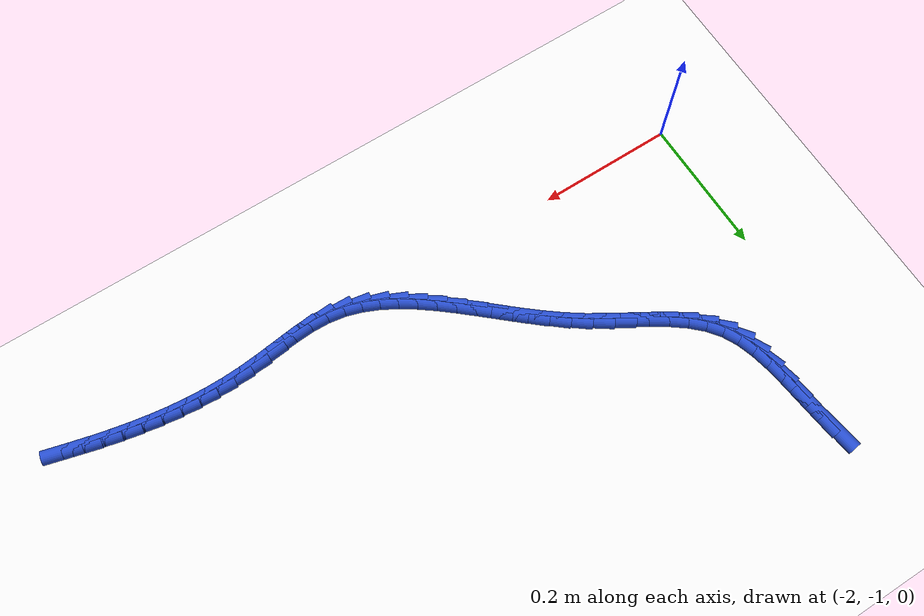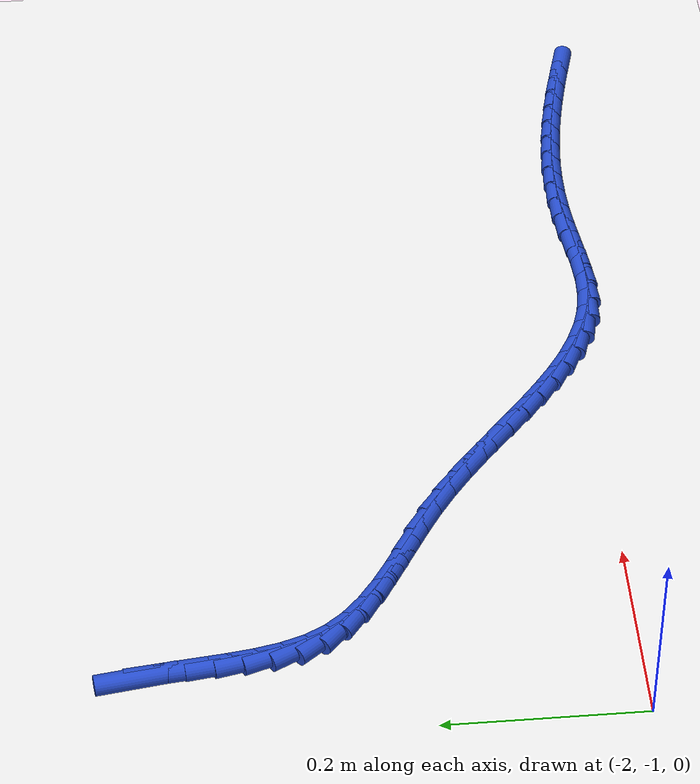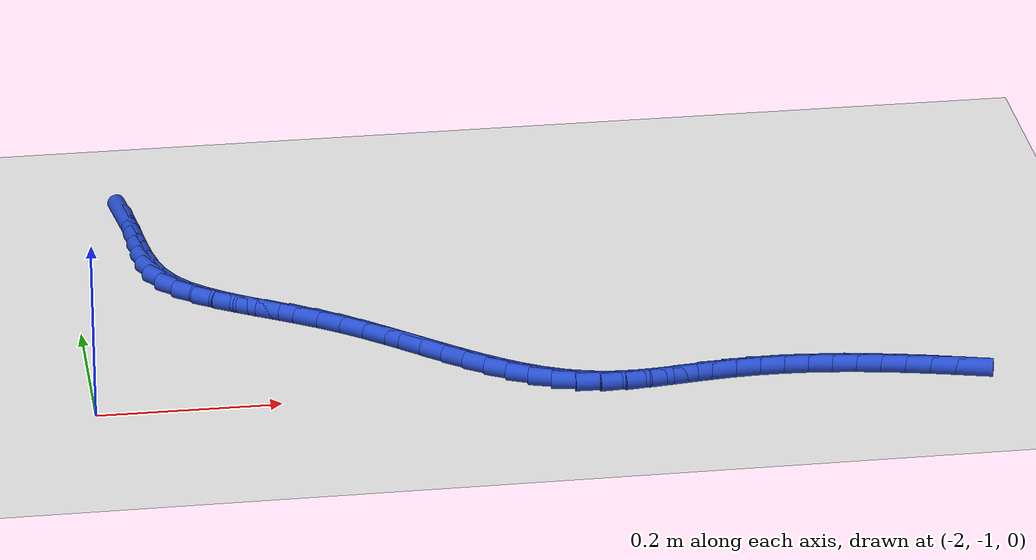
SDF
<sdf version="1.6">
 <world name="default">
  <model name="ground_plane">
   <static>1</static>
   <link name="link">
    <collision name="collision">
     <geometry><plane><normal>0 0 1</normal><size>100 100</size></plane></geometry>
     <surface><friction><ode><mu>100</mu><mu2>50</mu2></ode></friction></surface>
    </collision>
    <visual name="visual">
     <cast_shadows>0</cast_shadows>
     <geometry><plane><normal>0 0 1</normal><size>100 100</size></plane></geometry>
     <material>
      <script><uri>file://media/materials/scripts/gazebo.material</uri><name>Gazebo/WhiteGlow</name></script>
     </material>
    </visual>
   </link>
  </model>
  <model name="line">
   <link name="link_146">
    <pose>-1.9283180668192241 -0.5226677649625228 0.01 0 1.57 -1.428182317158857</pose>
    <collision name="collision">
     <geometry><cylinder><radius>0.01</radius><length>0.08</length></cylinder></geometry>
    </collision>
    <visual name="visual">
     <material>
      <script><name>Gazebo/Blue</name><uri>file://media/materials/scripts/gazebo.material</uri></script>
     </material>
     <geometry><cylinder><radius>0.01</radius><length>0.08</length></cylinder></geometry>
    </visual>
   </link>
   <link name="link_147">
    <pose>-1.9242471658663711 -0.5510188676943523 0.01 0 1.57 -1.4608194176168101</pose>
    <collision name="collision">
     <geometry><cylinder><radius>0.01</radius><length>0.08</length></cylinder></geometry>
    </collision>
    <visual name="visual">
     <material>
      <script><name>Gazebo/Blue</name><uri>file://media/materials/scripts/gazebo.material</uri></script>
     </material>
     <geometry><cylinder><radius>0.01</radius><length>0.08</length></cylinder></geometry>
    </visual>
   </link>
   <link name="link_148">
    <pose>-1.9211136744292805 -0.5793961711868875 0.01 0 1.57 -1.4624535359530468</pose>
    <collision name="collision">
     <geometry><cylinder><radius>0.01</radius><length>0.08</length></cylinder></geometry>
    </collision>
    <visual name="visual">
     <material>
      <script><name>Gazebo/Blue</name><uri>file://media/materials/scripts/gazebo.material</uri></script>
     </material>
     <geometry><cylinder><radius>0.01</radius><length>0.08</length></cylinder></geometry>
    </visual>
   </link>
   <link name="link_149">
    <pose>-1.9180720042766353 -0.6073607418010646 0.01 0 1.57 -1.4317137506174715</pose>
    <collision name="collision">
     <geometry><cylinder><radius>0.01</radius><length>0.08</length></cylinder></geometry>
    </collision>
    <visual name="visual">
     <material>
      <script><name>Gazebo/Blue</name><uri>file://media/materials/scripts/gazebo.material</uri></script>
     </material>
     <geometry><cylinder><radius>0.01</radius><length>0.08</length></cylinder></geometry>
    </visual>
   </link>
   <link name="link_150">
    <pose>-1.914276567177117 -0.6344736458978196 0.01 0 1.57 -1.3648388690680786</pose>
    <collision name="collision">
     <geometry><cylinder><radius>0.01</radius><length>0.08</length></cylinder></geometry>
    </collision>
    <visual name="visual">
     <material>
      <script><name>Gazebo/Blue</name><uri>file://media/materials/scripts/gazebo.material</uri></script>
     </material>
     <geometry><cylinder><radius>0.01</radius><length>0.08</length></cylinder></geometry>
    </visual>
   </link>
   <link name="link_151">
    <pose>-1.908881774899408 -0.6602959498380883 0.01 0 1.57 -1.2562046250236947</pose>
    <collision name="collision">
     <geometry><cylinder><radius>0.01</radius><length>0.08</length></cylinder></geometry>
    </collision>
    <visual name="visual">
     <material>
      <script><name>Gazebo/Blue</name><uri>file://media/materials/scripts/gazebo.material</uri></script>
     </material>
     <geometry><cylinder><radius>0.01</radius><length>0.08</length></cylinder></geometry>
    </visual>
   </link>
   <link name="link_152">
    <pose>-1.9010420392121903 -0.6843887199828069 0.01 0 1.57 -1.1010331367584443</pose>
    <collision name="collision">
     <geometry><cylinder><radius>0.01</radius><length>0.08</length></cylinder></geometry>
    </collision>
    <visual name="visual">
     <material>
      <script><name>Gazebo/Blue</name><uri>file://media/materials/scripts/gazebo.material</uri></script>
     </material>
     <geometry><cylinder><radius>0.01</radius><length>0.08</length></cylinder></geometry>
    </visual>
   </link>
   <link name="link_153">
    <pose>-1.8899117718851688 -0.7063130226935685 0.01 0 1.57 -0.9145454443701535</pose>
    <collision name="collision">
     <geometry><cylinder><radius>0.01</radius><length>0.08</length></cylinder></geometry>
    </collision>
    <visual name="visual">
     <material>
      <script><name>Gazebo/Blue</name><uri>file://media/materials/scripts/gazebo.material</uri></script>
     </material>
     <geometry><cylinder><radius>0.01</radius><length>0.08</length></cylinder></geometry>
    </visual>
   </link>
   <link name="link_154">
    <pose>-1.874906297295489 -0.7257977430604023 0.01 0 1.57 -0.7579574496428244</pose>
    <collision name="collision">
     <geometry><cylinder><radius>0.01</radius><length>0.08</length></cylinder></geometry>
    </collision>
    <visual name="visual">
     <material>
      <script><name>Gazebo/Blue</name><uri>file://media/materials/scripts/gazebo.material</uri></script>
     </material>
     <geometry><cylinder><radius>0.01</radius><length>0.08</length></cylinder></geometry>
    </visual>
   </link>
   <link name="link_155">
    <pose>-1.8564796592576254 -0.7432398694776705 0.01 0 1.57 -0.6468622499411779</pose>
    <collision name="collision">
     <geometry><cylinder><radius>0.01</radius><length>0.08</length></cylinder></geometry>
    </collision>
    <visual name="visual">
     <material>
      <script><name>Gazebo/Blue</name><uri>file://media/materials/scripts/gazebo.material</uri></script>
     </material>
     <geometry><cylinder><radius>0.01</radius><length>0.08</length></cylinder></geometry>
    </visual>
   </link>
   <link name="link_156">
    <pose>-1.8353443545161345 -0.7592026270061505 0.01 0 1.57 -0.5767141614459957</pose>
    <collision name="collision">
     <geometry><cylinder><radius>0.01</radius><length>0.08</length></cylinder></geometry>
    </collision>
    <visual name="visual">
     <material>
      <script><name>Gazebo/Blue</name><uri>file://media/materials/scripts/gazebo.material</uri></script>
     </material>
     <geometry><cylinder><radius>0.01</radius><length>0.08</length></cylinder></geometry>
    </visual>
   </link>
   <link name="link_157">
    <pose>-1.812212879815575 -0.7742492407066207 0.01 0 1.57 -0.5417617911326015</pose>
    <collision name="collision">
     <geometry><cylinder><radius>0.01</radius><length>0.08</length></cylinder></geometry>
    </collision>
    <visual name="visual">
     <material>
      <script><name>Gazebo/Blue</name><uri>file://media/materials/scripts/gazebo.material</uri></script>
     </material>
     <geometry><cylinder><radius>0.01</radius><length>0.08</length></cylinder></geometry>
    </visual>
   </link>
   <link name="link_158">
    <pose>-1.7877977319005014 -0.7889429356398586 0.01 0 1.57 -0.5378319226950578</pose>
    <collision name="collision">
     <geometry><cylinder><radius>0.01</radius><length>0.08</length></cylinder></geometry>
    </collision>
    <visual name="visual">
     <material>
      <script><name>Gazebo/Blue</name><uri>file://media/materials/scripts/gazebo.material</uri></script>
     </material>
     <geometry><cylinder><radius>0.01</radius><length>0.08</length></cylinder></geometry>
    </visual>
   </link>
   <link name="link_159">
    <pose>-1.7628114075154748 -0.803846936866643 0.01 0 1.57 -0.5629119353108926</pose>
    <collision name="collision">
     <geometry><cylinder><radius>0.01</radius><length>0.08</length></cylinder></geometry>
    </collision>
    <visual name="visual">
     <material>
      <script><name>Gazebo/Blue</name><uri>file://media/materials/scripts/gazebo.material</uri></script>
     </material>
     <geometry><cylinder><radius>0.01</radius><length>0.08</length></cylinder></geometry>
    </visual>
   </link>
   <link name="link_160">
    <pose>-1.7379664034050488 -0.8195244694477511 0.01 0 1.57 -0.6132337480424015</pose>
    <collision name="collision">
     <geometry><cylinder><radius>0.01</radius><length>0.08</length></cylinder></geometry>
    </collision>
    <visual name="visual">
     <material>
      <script><name>Gazebo/Blue</name><uri>file://media/materials/scripts/gazebo.material</uri></script>
     </material>
     <geometry><cylinder><radius>0.01</radius><length>0.08</length></cylinder></geometry>
    </visual>
   </link>
   <link name="link_161">
    <pose>-1.7139023275109 -0.8364593986556857 0.01 0 1.57 -0.6618076259596364</pose>
    <collision name="collision">
     <geometry><cylinder><radius>0.01</radius><length>0.08</length></cylinder></geometry>
    </collision>
    <visual name="visual">
     <material>
      <script><name>Gazebo/Blue</name><uri>file://media/materials/scripts/gazebo.material</uri></script>
     </material>
     <geometry><cylinder><radius>0.01</radius><length>0.08</length></cylinder></geometry>
    </visual>
   </link>
   <link name="link_162">
    <pose>-1.6907037177587656 -0.8545312412594643 0.01 0 1.57 -0.6962306165811635</pose>
    <collision name="collision">
     <geometry><cylinder><radius>0.01</radius><length>0.08</length></cylinder></geometry>
    </collision>
    <visual name="visual">
     <material>
      <script><name>Gazebo/Blue</name><uri>file://media/materials/scripts/gazebo.material</uri></script>
     </material>
     <geometry><cylinder><radius>0.01</radius><length>0.08</length></cylinder></geometry>
    </visual>
   </link>
   <link name="link_163">
    <pose>-1.668199772308917 -0.8733415054873643 0.01 0 1.57 -0.7166348384011467</pose>
    <collision name="collision">
     <geometry><cylinder><radius>0.01</radius><length>0.08</length></cylinder></geometry>
    </collision>
    <visual name="visual">
     <material>
      <script><name>Gazebo/Blue</name><uri>file://media/materials/scripts/gazebo.material</uri></script>
     </material>
     <geometry><cylinder><radius>0.01</radius><length>0.08</length></cylinder></geometry>
    </visual>
   </link>
   <link name="link_164">
    <pose>-1.646218337533887 -0.892490227769739 0.01 0 1.57 -0.7230046105934216</pose>
    <collision name="collision">
     <geometry><cylinder><radius>0.01</radius><length>0.08</length></cylinder></geometry>
    </collision>
    <visual name="visual">
     <material>
      <script><name>Gazebo/Blue</name><uri>file://media/materials/scripts/gazebo.material</uri></script>
     </material>
     <geometry><cylinder><radius>0.01</radius><length>0.08</length></cylinder></geometry>
    </visual>
   </link>
   <link name="link_165">
    <pose>-1.6245872598062083 -0.911577444536941 0.01 0 1.57 -0.7149752960265192</pose>
    <collision name="collision">
     <geometry><cylinder><radius>0.01</radius><length>0.08</length></cylinder></geometry>
    </collision>
    <visual name="visual">
     <material>
      <script><name>Gazebo/Blue</name><uri>file://media/materials/scripts/gazebo.material</uri></script>
     </material>
     <geometry><cylinder><radius>0.01</radius><length>0.08</length></cylinder></geometry>
    </visual>
   </link>
   <link name="link_166">
    <pose>-1.603134385498413 -0.9302031922193231 0.01 0 1.57 -0.6917579406885099</pose>
    <collision name="collision">
     <geometry><cylinder><radius>0.01</radius><length>0.08</length></cylinder></geometry>
    </collision>
    <visual name="visual">
     <material>
      <script><name>Gazebo/Blue</name><uri>file://media/materials/scripts/gazebo.material</uri></script>
     </material>
     <geometry><cylinder><radius>0.01</radius><length>0.08</length></cylinder></geometry>
    </visual>
   </link>
   <link name="link_167">
    <pose>-1.581687560983032 -0.9479675072472378 0.01 0 1.57 -0.6521275946486315</pose>
    <collision name="collision">
     <geometry><cylinder><radius>0.01</radius><length>0.08</length></cylinder></geometry>
    </collision>
    <visual name="visual">
     <material>
      <script><name>Gazebo/Blue</name><uri>file://media/materials/scripts/gazebo.material</uri></script>
     </material>
     <geometry><cylinder><radius>0.01</radius><length>0.08</length></cylinder></geometry>
    </visual>
   </link>
   <link name="link_168">
    <pose>-1.5600746326325998 -0.9644704260510385 0.01 0 1.57 -0.5945162968501142</pose>
    <collision name="collision">
     <geometry><cylinder><radius>0.01</radius><length>0.08</length></cylinder></geometry>
    </collision>
    <visual name="visual">
     <material>
      <script><name>Gazebo/Blue</name><uri>file://media/materials/scripts/gazebo.material</uri></script>
     </material>
     <geometry><cylinder><radius>0.01</radius><length>0.08</length></cylinder></geometry>
    </visual>
   </link>
   <link name="link_169">
    <pose>-1.5381234468196465 -0.979311985061077 0.01 0 1.57 -0.5172995400605817</pose>
    <collision name="collision">
     <geometry><cylinder><radius>0.01</radius><length>0.08</length></cylinder></geometry>
    </collision>
    <visual name="visual">
     <material>
      <script><name>Gazebo/Blue</name><uri>file://media/materials/scripts/gazebo.material</uri></script>
     </material>
     <geometry><cylinder><radius>0.01</radius><length>0.08</length></cylinder></geometry>
    </visual>
   </link>
   <link name="link_170">
    <pose>-1.5156618499167058 -0.9920922207077072 0.01 0 1.57 -0.4194019069253364</pose>
    <collision name="collision">
     <geometry><cylinder><radius>0.01</radius><length>0.08</length></cylinder></geometry>
    </collision>
    <visual name="visual">
     <material>
      <script><name>Gazebo/Blue</name><uri>file://media/materials/scripts/gazebo.material</uri></script>
     </material>
     <geometry><cylinder><radius>0.01</radius><length>0.08</length></cylinder></geometry>
    </visual>
   </link>
   <link name="link_171">
    <pose>-1.4925176882963094 -1.002411169421281 0.01 0 1.57 -0.3012915268703458</pose>
    <collision name="collision">
     <geometry><cylinder><radius>0.01</radius><length>0.08</length></cylinder></geometry>
    </collision>
    <visual name="visual">
     <material>
      <script><name>Gazebo/Blue</name><uri>file://media/materials/scripts/gazebo.material</uri></script>
     </material>
     <geometry><cylinder><radius>0.01</radius><length>0.08</length></cylinder></geometry>
    </visual>
   </link>
   <link name="link_172">
    <pose>-1.4685188083309888 -1.0098688676321512 0.01 0 1.57 -0.1661445566823522</pose>
    <collision name="collision">
     <geometry><cylinder><radius>0.01</radius><length>0.08</length></cylinder></geometry>
    </collision>
    <visual name="visual">
     <material>
      <script><name>Gazebo/Blue</name><uri>file://media/materials/scripts/gazebo.material</uri></script>
     </material>
     <geometry><cylinder><radius>0.01</radius><length>0.08</length></cylinder></geometry>
    </visual>
   </link>
   <link name="link_173">
    <pose>-1.4434930869376175 -1.0140654403499056 0.01 0 1.57 -0.032030046231099125</pose>
    <collision name="collision">
     <geometry><cylinder><radius>0.01</radius><length>0.08</length></cylinder></geometry>
    </collision>
    <visual name="visual">
     <material>
      <script><name>Gazebo/Blue</name><uri>file://media/materials/scripts/gazebo.material</uri></script>
     </material>
     <geometry><cylinder><radius>0.01</radius><length>0.08</length></cylinder></geometry>
    </visual>
   </link>
   <link name="link_174">
    <pose>-1.417372318688926 -1.01490237599483 0.01 0 1.57 0.06102485229881073</pose>
    <collision name="collision">
     <geometry><cylinder><radius>0.01</radius><length>0.08</length></cylinder></geometry>
    </collision>
    <visual name="visual">
     <material>
      <script><name>Gazebo/Blue</name><uri>file://media/materials/scripts/gazebo.material</uri></script>
     </material>
     <geometry><cylinder><radius>0.01</radius><length>0.08</length></cylinder></geometry>
    </visual>
   </link>
   <link name="link_175">
    <pose>-1.3904243906078417 -1.0132558382362054 0.01 0 1.57 0.11095755024510838</pose>
    <collision name="collision">
     <geometry><cylinder><radius>0.01</radius><length>0.08</length></cylinder></geometry>
    </collision>
    <visual name="visual">
     <material>
      <script><name>Gazebo/Blue</name><uri>file://media/materials/scripts/gazebo.material</uri></script>
     </material>
     <geometry><cylinder><radius>0.01</radius><length>0.08</length></cylinder></geometry>
    </visual>
   </link>
   <link name="link_176">
    <pose>-1.362985011543016 -1.0101986754794279 0.01 0 1.57 0.12241167814110858</pose>
    <collision name="collision">
     <geometry><cylinder><radius>0.01</radius><length>0.08</length></cylinder></geometry>
    </collision>
    <visual name="visual">
     <material>
      <script><name>Gazebo/Blue</name><uri>file://media/materials/scripts/gazebo.material</uri></script>
     </material>
     <geometry><cylinder><radius>0.01</radius><length>0.08</length></cylinder></geometry>
    </visual>
   </link>
   <link name="link_177">
    <pose>-1.3353898903430992 -1.006803736129893 0.01 0 1.57 0.09690746780223668</pose>
    <collision name="collision">
     <geometry><cylinder><radius>0.01</radius><length>0.08</length></cylinder></geometry>
    </collision>
    <visual name="visual">
     <material>
      <script><name>Gazebo/Blue</name><uri>file://media/materials/scripts/gazebo.material</uri></script>
     </material>
     <geometry><cylinder><radius>0.01</radius><length>0.08</length></cylinder></geometry>
    </visual>
   </link>
   <link name="link_178">
    <pose>-1.3079728173651628 -1.0041384685580848 0.01 0 1.57 0.047235627810678964</pose>
    <collision name="collision">
     <geometry><cylinder><radius>0.01</radius><length>0.08</length></cylinder></geometry>
    </collision>
    <visual name="visual">
     <material>
      <script><name>Gazebo/Blue</name><uri>file://media/materials/scripts/gazebo.material</uri></script>
     </material>
     <geometry><cylinder><radius>0.01</radius><length>0.08</length></cylinder></geometry>
    </visual>
   </link>
   <link name="link_179">
    <pose>-1.2809217147534704 -1.0028597415679372 0.01 0 1.57 -0.002721155459738114</pose>
    <collision name="collision">
     <geometry><cylinder><radius>0.01</radius><length>0.08</length></cylinder></geometry>
    </collision>
    <visual name="visual">
     <material>
      <script><name>Gazebo/Blue</name><uri>file://media/materials/scripts/gazebo.material</uri></script>
     </material>
     <geometry><cylinder><radius>0.01</radius><length>0.08</length></cylinder></geometry>
    </visual>
   </link>
   <link name="link_180">
    <pose>-1.2541786869736768 -1.0029325136836085 0.01 0 1.57 -0.049841390513055125</pose>
    <collision name="collision">
     <geometry><cylinder><radius>0.01</radius><length>0.08</length></cylinder></geometry>
    </collision>
    <visual name="visual">
     <material>
      <script><name>Gazebo/Blue</name><uri>file://media/materials/scripts/gazebo.material</uri></script>
     </material>
     <geometry><cylinder><radius>0.01</radius><length>0.08</length></cylinder></geometry>
    </visual>
   </link>
   <link name="link_181">
    <pose>-1.2276622070716967 -1.0042552273742038 0.01 0 1.57 -0.09343067587534445</pose>
    <collision name="collision">
     <geometry><cylinder><radius>0.01</radius><length>0.08</length></cylinder></geometry>
    </collision>
    <visual name="visual">
     <material>
      <script><name>Gazebo/Blue</name><uri>file://media/materials/scripts/gazebo.material</uri></script>
     </material>
     <geometry><cylinder><radius>0.01</radius><length>0.08</length></cylinder></geometry>
    </visual>
   </link>
   <link name="link_182">
    <pose>-1.2012907480934454 -1.0067263251088288 0.01 0 1.57 -0.13293229082967925</pose>
    <collision name="collision">
     <geometry><cylinder><radius>0.01</radius><length>0.08</length></cylinder></geometry>
    </collision>
    <visual name="visual">
     <material>
      <script><name>Gazebo/Blue</name><uri>file://media/materials/scripts/gazebo.material</uri></script>
     </material>
     <geometry><cylinder><radius>0.01</radius><length>0.08</length></cylinder></geometry>
    </visual>
   </link>
   <link name="link_183">
    <pose>-1.1749827830848385 -1.0102442493565889 0.01 0 1.57 -0.16793874326624625</pose>
    <collision name="collision">
     <geometry><cylinder><radius>0.01</radius><length>0.08</length></cylinder></geometry>
    </collision>
    <visual name="visual">
     <material>
      <script><name>Gazebo/Blue</name><uri>file://media/materials/scripts/gazebo.material</uri></script>
     </material>
     <geometry><cylinder><radius>0.01</radius><length>0.08</length></cylinder></geometry>
    </visual>
   </link>
   <link name="link_184">
    <pose>-1.1486567850917906 -1.0147074425865894 0.01 0 1.57 -0.1981884124323426</pose>
    <collision name="collision">
     <geometry><cylinder><radius>0.01</radius><length>0.08</length></cylinder></geometry>
    </collision>
    <visual name="visual">
     <material>
      <script><name>Gazebo/Blue</name><uri>file://media/materials/scripts/gazebo.material</uri></script>
     </material>
     <geometry><cylinder><radius>0.01</radius><length>0.08</length></cylinder></geometry>
    </visual>
   </link>
   <link name="link_185">
    <pose>-1.122231227160217 -1.020014347267936 0.01 0 1.57 -0.22355143180367398</pose>
    <collision name="collision">
     <geometry><cylinder><radius>0.01</radius><length>0.08</length></cylinder></geometry>
    </collision>
    <visual name="visual">
     <material>
      <script><name>Gazebo/Blue</name><uri>file://media/materials/scripts/gazebo.material</uri></script>
     </material>
     <geometry><cylinder><radius>0.01</radius><length>0.08</length></cylinder></geometry>
    </visual>
   </link>
   <link name="link_186">
    <pose>-1.095624582336033 -1.0260634058697338 0.01 0 1.57 -0.24400956547551306</pose>
    <collision name="collision">
     <geometry><cylinder><radius>0.01</radius><length>0.08</length></cylinder></geometry>
    </collision>
    <visual name="visual">
     <material>
      <script><name>Gazebo/Blue</name><uri>file://media/materials/scripts/gazebo.material</uri></script>
     </material>
     <geometry><cylinder><radius>0.01</radius><length>0.08</length></cylinder></geometry>
    </visual>
   </link>
   <link name="link_187">
    <pose>-1.0687553236651535 -1.0327530608610882 0.01 0 1.57 -0.25963425004287793</pose>
    <collision name="collision">
     <geometry><cylinder><radius>0.01</radius><length>0.08</length></cylinder></geometry>
    </collision>
    <visual name="visual">
     <material>
      <script><name>Gazebo/Blue</name><uri>file://media/materials/scripts/gazebo.material</uri></script>
     </material>
     <geometry><cylinder><radius>0.01</radius><length>0.08</length></cylinder></geometry>
    </visual>
   </link>
  </model>
 </world>
</sdf>
